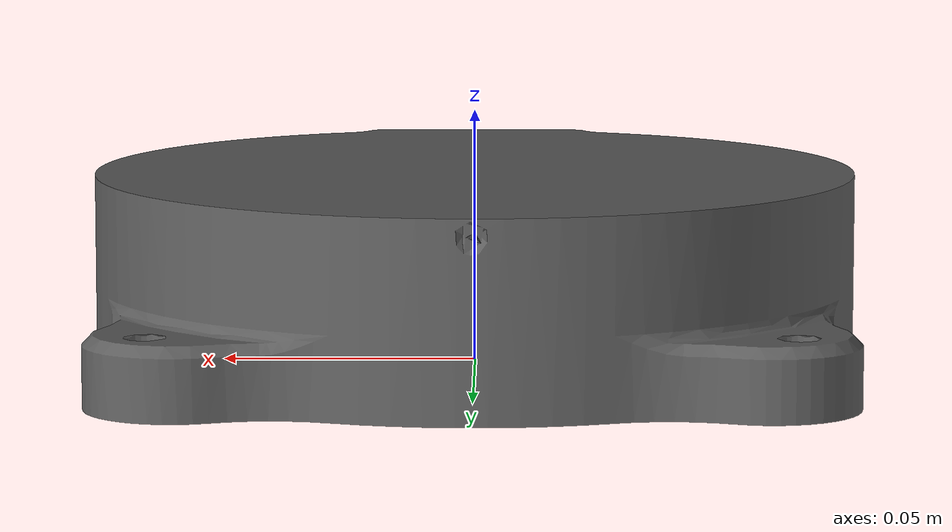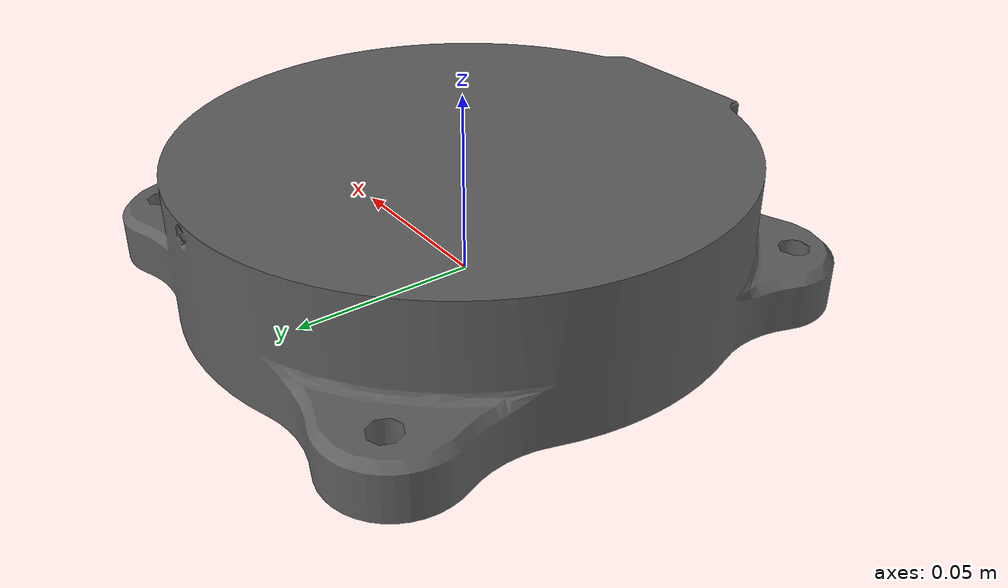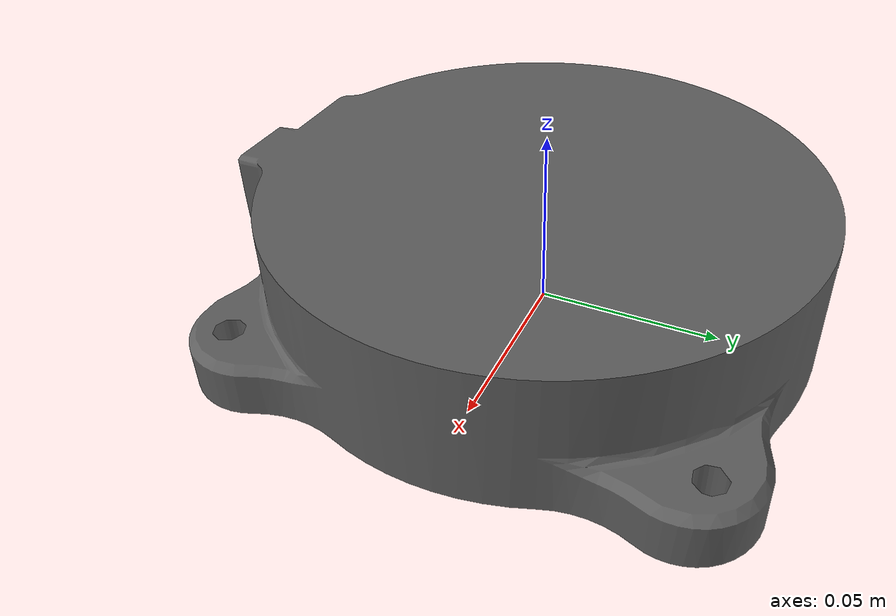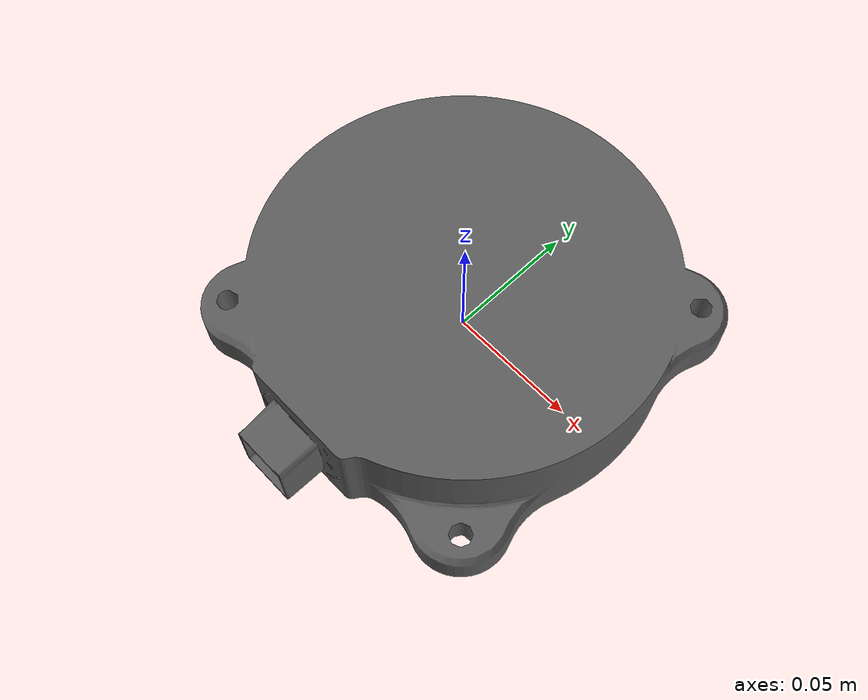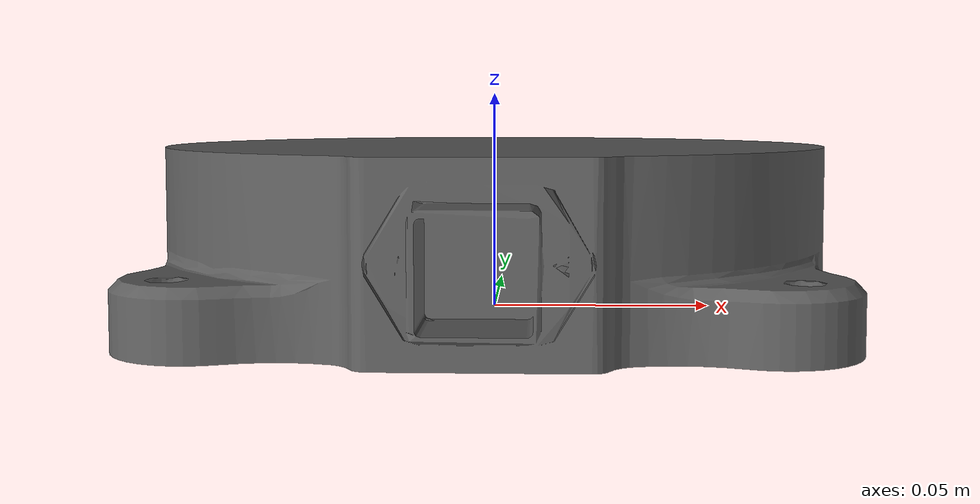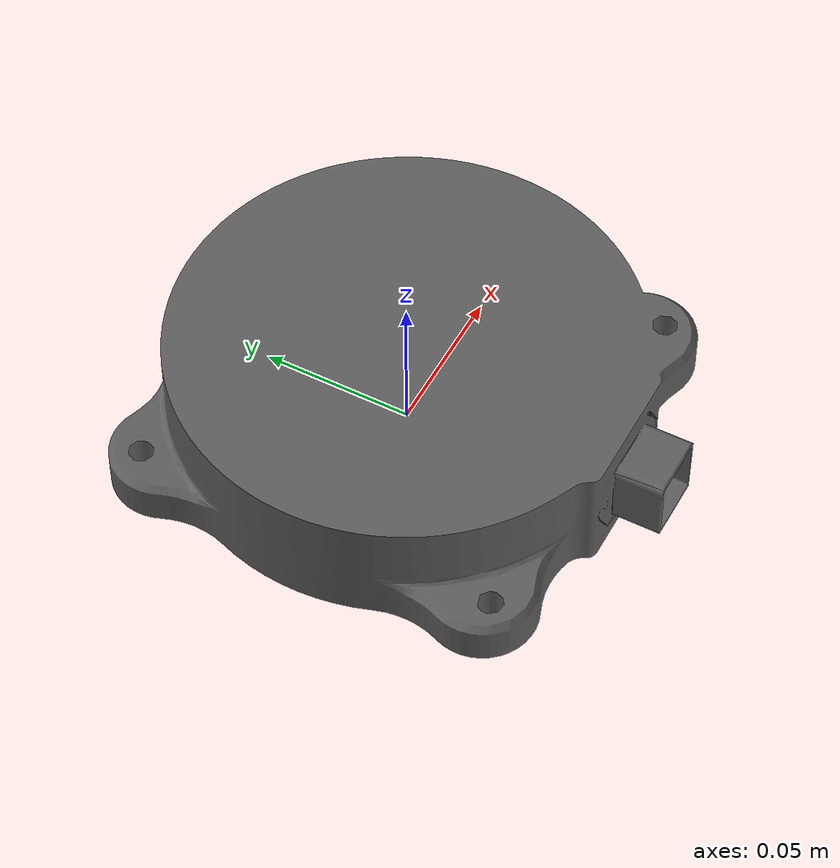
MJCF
<mujoco model="base">
  <default>
    <default class="visual">
      <geom group="2" type="mesh" contype="0" conaffinity="0"/>
    </default>
    <default class="collision">
      <geom group="3" type="mesh"/>
    </default>
  </default>
  <asset>
    <material name="SWMaterial-2_001" specular="0.5" shininess="0.25" rgba="0.371451 0.371451 0.371451 1.000000"/>
    <mesh file="base.obj"/>
  </asset>
  <worldbody>
    <body name="base">
      <geom material="SWMaterial-2_001" mesh="base" class="visual"/>
      <geom mesh="base" class="collision"/>
    </body>
  </worldbody>
</mujoco>
